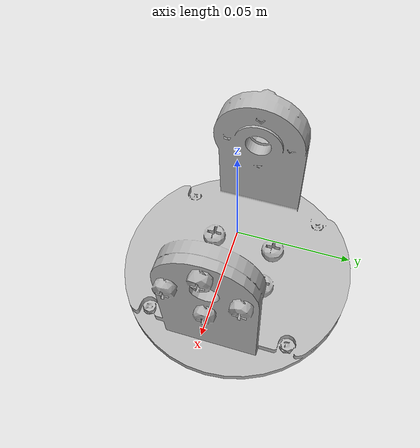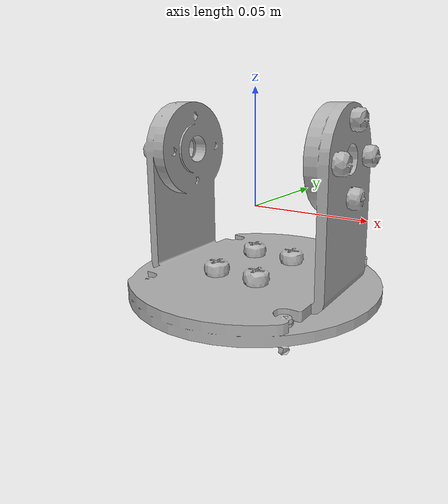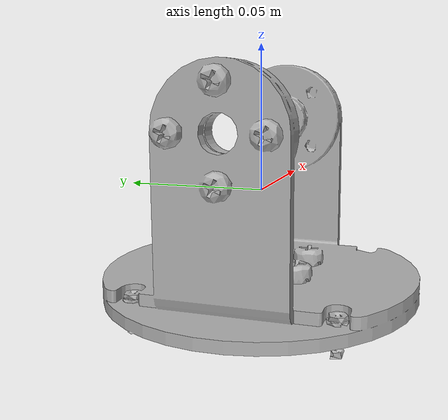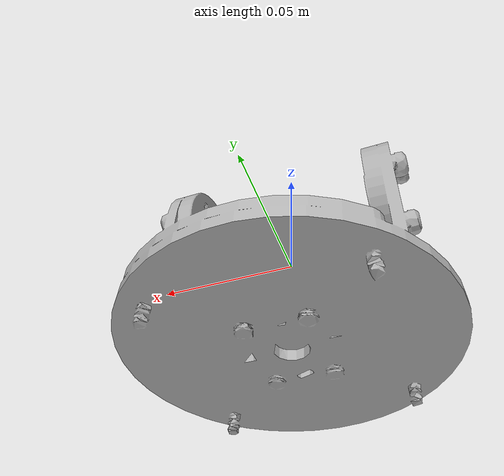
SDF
<?xml version="1.0" ?>
<sdf version="1.7">
  <model name="dataset_object">
    <static>true</static>

    <!--
      Manual/example dataset object model.
      Normal simulation launches dynamically generate the object SDF from
      SIM_PART/SIM_OBJECT in gazebo_spawn.launch.py.
    -->

    <link name="link">
      <visual name="visual">
        <geometry>
          <mesh>
            <uri>package://as_sim/worlds/Dataset/1.stl</uri>

            <scale>0.001 0.001 0.001</scale>
          </mesh>
        </geometry>
         <material>
            <ambient>0.4 0.4 0.4 1</ambient>
            <diffuse>0.7 0.7 0.7 1</diffuse>
            <specular>0.2 0.2 0.2 1</specular>
            <emissive>0 0 0 1</emissive>
        </material>
      </visual>

      <collision name="collision">
        <geometry>
          <mesh>
            <uri>package://as_sim/worlds/Dataset/1.stl</uri>

            <scale>0.001 0.001 0.001</scale>
          </mesh>
        </geometry>
      </collision>
    </link>
  </model>
</sdf>
